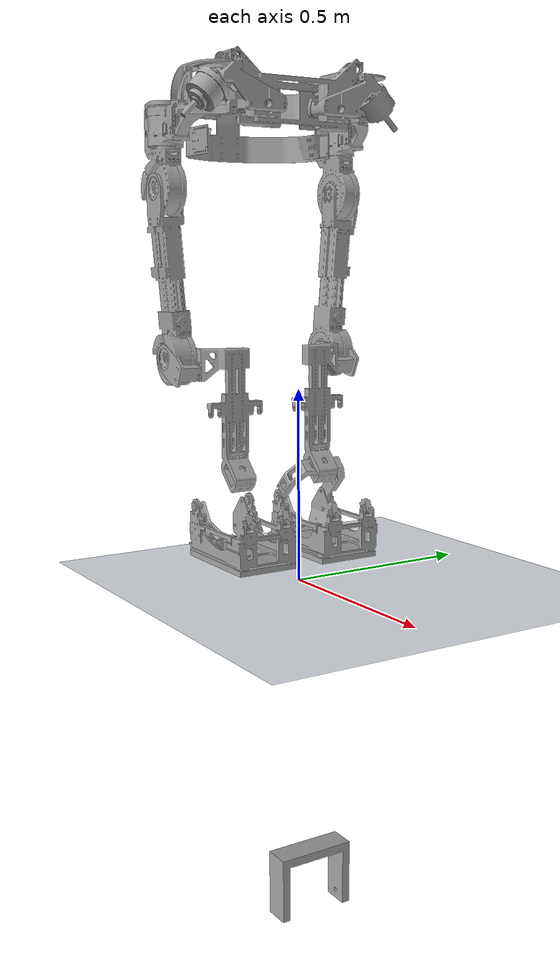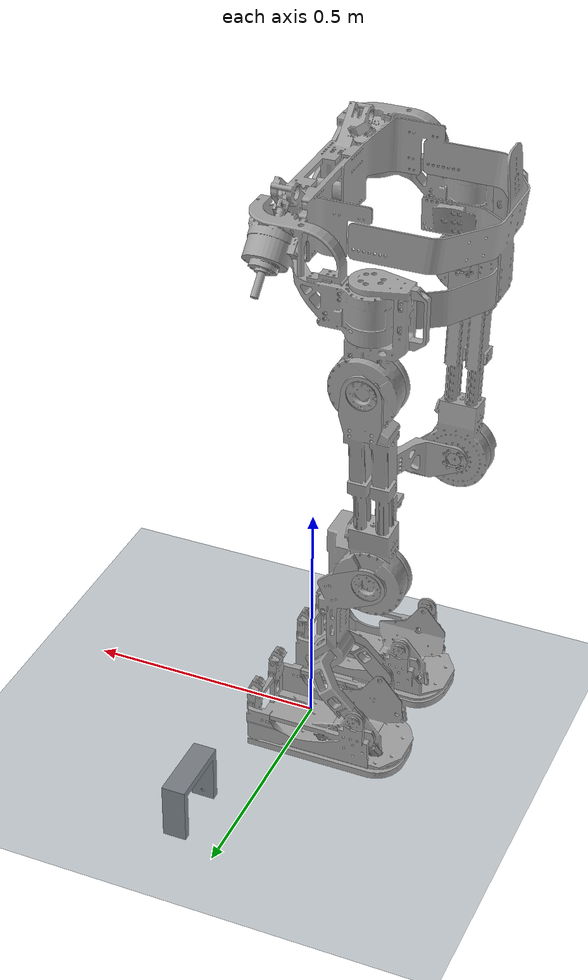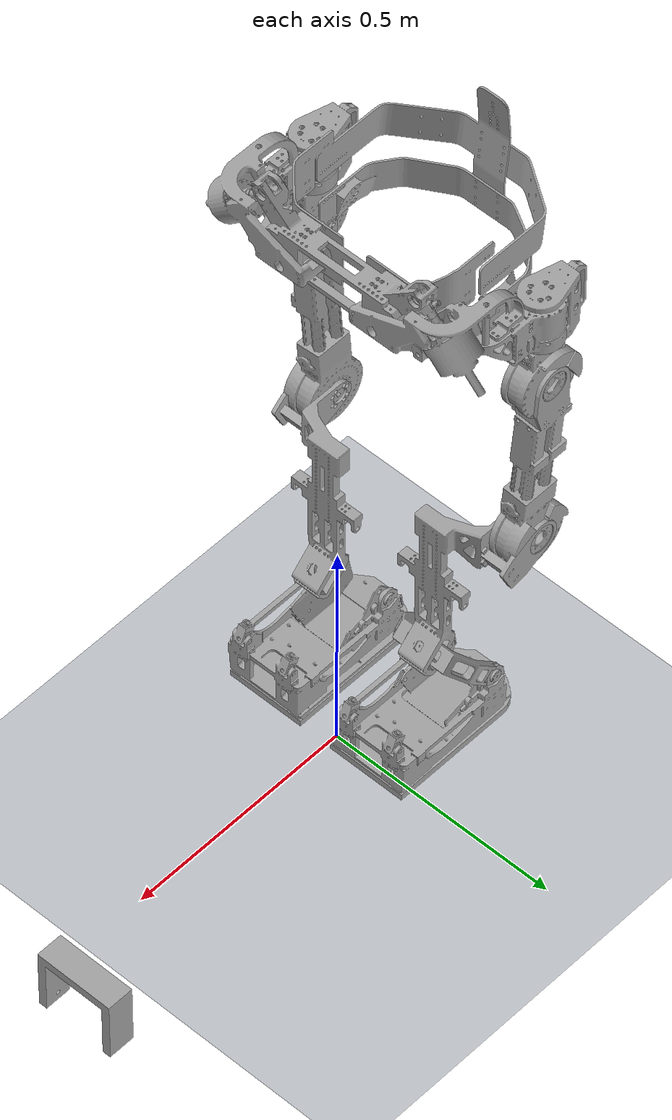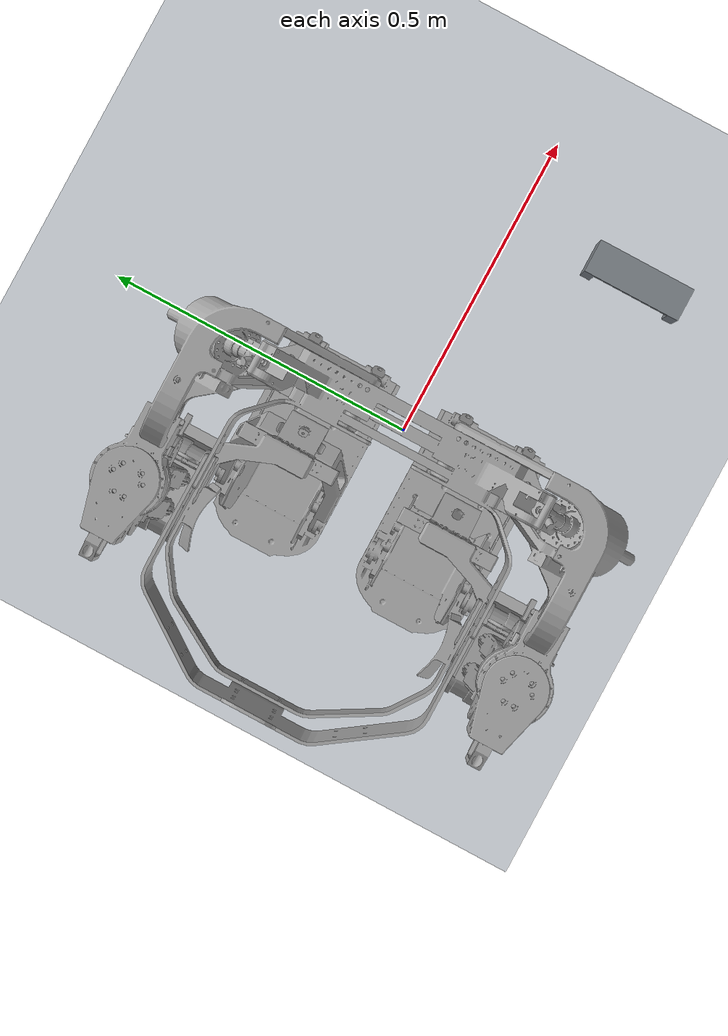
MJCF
<mujoco model="WalkON5">
    <compiler inertiafromgeom="true" angle="degree"/>
    <default>
        <joint limited="true" damping="1" armature="0"/>
        <geom condim="1" material="matgeom"/>
    </default>
    <option timestep=".005" iterations="50" tolerance="1e-16" solver="Newton" jacobian="dense" cone="pyramidal">
        <flag contact="enable"/>
    </option>
    <size nconmax="50" njmax="500" nstack="10000"/>
    <visual>
        <map force="0.1" zfar="30"/>
        <rgba haze="0.35 0.35 0.35 1"/>
        <quality shadowsize="2048"/>
        <global offwidth="1200" offheight="960"/>
    </visual>
    <asset>
        <texture type="skybox" builtin="gradient" rgb1="0.3 0.5 0.7" rgb2="0 0 0" width="512" height="512"/>
        <texture name="texplane" type="2d" builtin="checker" rgb1=".2 .3 .4" rgb2=".1 0.15 0.2" width="512" height="512" mark="cross" markrgb=".8 .8 .8"/>
        <texture name="texgeom" type="cube" builtin="flat" mark="cross" width="127" height="1278"
            rgb1="0.8 0.8 0.8" rgb2="0.6 0.6 0.6" markrgb="1 1 1" random="0.01"/>
        <material name="matplane" reflectance="0.3" texture="texplane" texrepeat="1 1" texuniform="true"/>
        <material name="matgeom" texture="texgeom" texuniform="true" rgba="0.8 0.8 0.8 1"/>
        <mesh name="BASE" file="../walkon_stls/BASE.STL"/>
        <mesh name="L_BASE" file="../walkon_stls/L_BASE.STL"/>
        <mesh name="L_HIP" file="../walkon_stls/L_HIP.STL"/>
        <mesh name="L_THIGH" file="../walkon_stls/L_THIGH.STL"/>
        <mesh name="L_SHANK" file="../walkon_stls/L_SHANK.STL"/>
        <mesh name="L_ANKLE" file="../walkon_stls/L_ANKLE.STL"/>
        <mesh name="L_FOOT" file="../walkon_stls/L_FOOT.STL"/>
        <mesh name="R_BASE" file="../walkon_stls/R_BASE.STL"/>
        <mesh name="R_HIP" file="../walkon_stls/R_HIP.STL"/>
        <mesh name="R_THIGH" file="../walkon_stls/R_THIGH.STL"/>
        <mesh name="R_SHANK" file="../walkon_stls/R_SHANK.STL"/>
        <mesh name="R_ANKLE" file="../walkon_stls/R_ANKLE.STL"/>
        <mesh name="R_FOOT" file="../walkon_stls/R_FOOT.STL"/>
    </asset>
    <worldbody>
        <geom name="floor" pos="0 0 0" size="0 0 .25" type="plane" material="matplane" condim="3"/>
        <light name="light" pos="0 5 5"/>

        <body name="BASE" pos="0 0 1.2">
            <freejoint/>
            <geom type="mesh" mesh="BASE" pos="0 0 0"/>
            <inertial mass="4.06288" pos="0.08148 0.14026 0.0055"/>
            <!-- LEFT LIMB -->
            <body name="L_BASE" pos="0 .105 0">
                <joint name="JOINT_LH_ABD" pos="0 0 0" axis="1 0 0" range="-10 15"/>
                <geom type="mesh" mesh="L_BASE"/>
                <inertial mass="4.90278" pos="0.02442 0.38146 -0.0482"/>
                <body name="L_HIP" pos="-.2125 .155 -.04085">
                    <joint name="JOINT_LH_ROT" pos="0 0 0" axis="0 0 1" range="-15 15" damping="5.65"/>
                    <geom type="mesh" mesh="L_HIP"/>
                    <inertial mass="4.36022" pos="-0.12588 0.41316 -0.20155"/>
                    <body name="L_THIGH" pos="0 .00175 -.15415">
                        <joint name="JOINT_LH_EXT" axis="0 1 0" range="-115 30" damping="3.25"/>
                        <geom type="mesh" mesh="L_THIGH"/>
                        <inertial mass="2.70534" pos="-0.13199 0.4022 -0.2723"/>
                        <body name="L_SHANK" pos="-.009 -.025 -.43062">
                            <joint name="JOINT_LK_EXT" axis="0 1 0" range="5 125" damping="3"/>
                            <geom type="mesh" mesh="L_SHANK"/>
                            <inertial mass="2.49032" pos="-0.01306 0.29591 -0.01005"/>
                            <body name="L_ANKLE" pos="0.04227 -0.11025 -0.38744" euler="0 -45 0">
                                <joint name="JOINT_LA_INV" axis="1 0 0" range="-30 30"/>
                                <geom type="mesh" mesh="L_ANKLE"/>
                                <inertial mass="0.55947" pos="-0.01557 0.27552 -0.01969"/>
                                <body name="L_FOOT" pos="0 0 0" euler="0 45 0">
                                    <joint name="JOINT_LA_PLA" pos="0 0 0" axis="0 1 0" range="-30 115"/>
                                    <geom type="mesh" mesh="L_FOOT"/>
                                    <inertial mass="7.55104" pos="0.04099 0.27747 0.01767"/>
                                </body>
                            </body>
                        </body>
                    </body>
                </body>
            </body>

            <!-- RIGHT LIMB -->
            <body name="R_BASE" pos="0 -.105 0">
                <joint name="JOINT_RH_ABD" pos="0 0 0" axis="1 0 0" range="-15 10"/>
                <geom type="mesh" mesh="R_BASE"/>
                <inertial mass="4.90278" pos="0.02442 -0.10094 -0.0482"/>
                <body name="R_HIP" pos="-.2125 -.155 -.04085">
                    <joint name="JOINT_RH_ROT" pos="0 0 0" axis="0 0 1" range="-15 15" damping="5.65"/>
                    <geom type="mesh" mesh="R_HIP"/>
                    <inertial mass="4.36022" pos="-0.12588 -0.13264 -0.20155"/>
                    <body name="R_THIGH" pos="0 -.00175 -.15415">
                        <joint name="JOINT_RH_EXT" axis="0 1 0" range="-115 30" damping="3.25"/>
                        <geom type="mesh" mesh="R_THIGH"/>
                        <inertial mass="2.70534" pos="-0.13199 -0.12168 -0.2723"/>
                        <body name="R_SHANK" pos="-.009 .025 -.43062">
                            <joint name="JOINT_RK_EXT" axis="0 1 0" range="5 125" damping="3"/>
                            <geom type="mesh" mesh="R_SHANK"/>
                            <inertial mass="2.49032" pos="-0.01306 -0.01539 -0.01005"/>
                            <body name="R_ANKLE" pos="0.04227 0.11025 -0.38744" euler="0 -45 0">
                                <joint name="JOINT_RA_INV" axis="1 0 0" range="-30 30"/>
                                <geom type="mesh" mesh="R_ANKLE"/>
                                <inertial mass="0.55947" pos="-0.01557 0.005 -0.01969"/>
                                <body name="R_FOOT" pos="0 0 0" euler="0 45 0">
                                    <joint name="JOINT_RA_PLA" pos="0 0 0" axis="0 1 0" range="-30 115"/>
                                    <geom type="mesh" mesh="R_FOOT"/>
                                    <inertial mass="7.55104" pos="0.04099 0.00305 0.01767"/>
                                </body>
                            </body>
                        </body>
                    </body>
                </body>
            </body>
        </body>
    </worldbody>

        <!-- LEFT LIMB ACTUATORS -->

        <!-- RIGHT LIMB ACTUATORS -->

    <actuator>
        <!-- LEFT LIMB ACTUATORS -->
        <general name="ACT_L_HIP_ABD" joint="JOINT_LH_ABD" gear="1" ctrllimited="false"/>
        <general name="ACT_L_HIP_ROT" joint="JOINT_LH_ROT" gear="1" ctrllimited="false"/>
        <general name="ACT_L_HIP_EXT" joint="JOINT_LH_EXT" gear="1" ctrllimited="false"/>
        <general name="ACT_L_KNEE_EXT" joint="JOINT_LK_EXT" gear="1" ctrllimited="false"/>
        <general name="ACT_L_ANK_INVER" joint="JOINT_LA_INV" gear="1" ctrllimited="false"/>
        <general name="ACT_L_ANK_PLANTAR" joint="JOINT_LA_PLA" gear="1" ctrllimited="false"/>

        <!-- RIGHT LIMB ACTUATORS -->
        <general name="ACT_R_HIP_ABD" joint="JOINT_RH_ABD" gear="1" ctrllimited="false"/>
        <general name="ACT_R_HIP_ROT" joint="JOINT_RH_ROT" gear="1" ctrllimited="false"/>
        <general name="ACT_R_HIP_EXT" joint="JOINT_RH_EXT" gear="1" ctrllimited="false"/>
        <general name="ACT_R_KNEE_EXT" joint="JOINT_RK_EXT" gear="1" ctrllimited="false"/>
        <general name="ACT_R_ANK_INVER" joint="JOINT_RA_INV" gear="1" ctrllimited="false"/>
        <general name="ACT_R_ANK_PLANTAR" joint="JOINT_RA_PLA" gear="1" ctrllimited="false"/>
    </actuator>

</mujoco>
